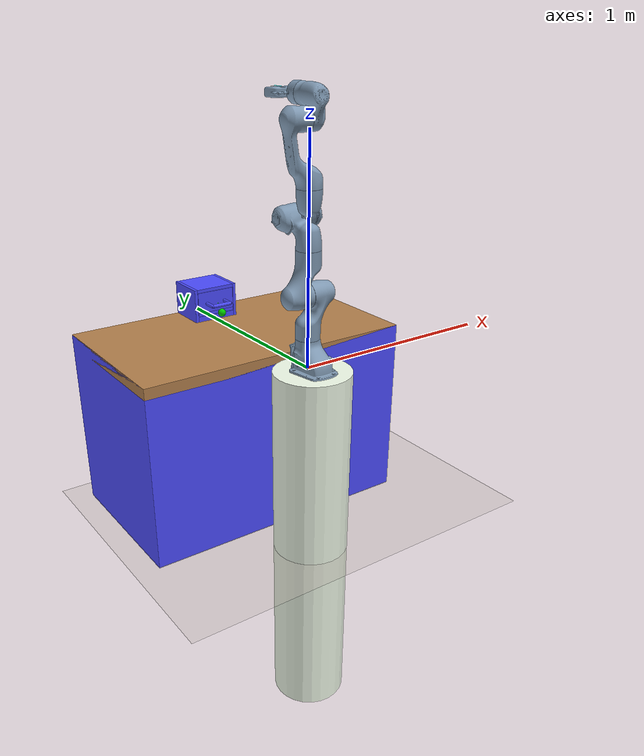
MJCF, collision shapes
<mujoco>
    <include file="../scene/basic_scene.xml"/>
    <include file="../objects/assets/drawer_dependencies.xml"/>

    <!-- franka files -->
    <include file="../franka_reach/third_party/franka/assets/assets.xml"/>
    <include file="../franka_reach/third_party/franka/assets/actuator0.xml"/>

    <compiler inertiafromgeom='auto' inertiagrouprange='3 5' angle="radian"/>

    <worldbody>
      <camera pos="0 0.5 1.5" name="topview" />
      <camera name="corner" mode="fixed" pos="-1.1 -0.4 0.6" xyaxes="1 -1 0 0.2 0.2 1"/>
      <camera name="corner2" fovy="60" mode="fixed" pos="1.3 -0.2 1.1" euler="3.9 2.3 3.74"/>
      <camera name="corner3" fovy="45" mode="fixed" pos="0.9 0 1.5" euler="3.5 2.7 4.14"/>

      <body pos='0 0 0' euler='0 0 1.57'>
          <geom type='cylinder' size='0.18 .90' pos='-.04 0 -0.90' class='panda_viz'/>
          <include file="../franka_reach/third_party/franka/assets/chain0.xml"/>
      </body>

      <body name="mocap" mocap="true" pos="0 0 1.09" euler="-1.57 0 -.785">
        <site name="mocap" pos="0 0 0" rgba="0.0 0.5 0.5 0" size="0.05" type="sphere"></site>
      </body>
    </worldbody>
    <!-- franka files -->

    <worldbody>
        <body name="drawer" pos="0. 0.9 0">
            <include file="../objects/assets/drawer.xml"/>
        </body>

        <site name="goal" pos="0. 0.74 0.05" size="0.02"
              rgba="0 0.8 0 1"/>
    </worldbody>
    <equality>
        <weld body1="mocap" body2="hand" solref="0.005 1"></weld>
    </equality>

</mujoco>

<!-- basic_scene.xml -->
<mujocoinclude>
  <option timestep='0.0025' iterations="50" tolerance="1e-10" solver="Newton" jacobian="dense" cone="elliptic"/>

  <asset>
    <!-- night sky -->
     <texture type="skybox" builtin="gradient" rgb1=".50 .495 .48" rgb2=".50 .495 .48" width="32" height="32"/>
     <texture name="T_table" type="cube" file="../textures/wood2.png"/>
     <texture name="T_floor" type="2d" file="../textures/floor2.png"/>

     <material name="basic_floor" texture="T_floor" texrepeat="12 12" shininess=".3" specular="0.5" reflectance="0.2"/>
     <material name="table_wood" texture="T_table" shininess=".3" specular="0.5"/>
      <!--material name="table_wood" shininess=".3" specular="0.5" rgba="1 1 1 1"/-->
     <material name="table_col" rgba="0.3 0.3 1.0 0.5" shininess="0" specular="0"/>

     <mesh file="../objects/meshes/table/tablebody.stl" name="tablebody" scale="1 1 1"/>
     <mesh file="../objects/meshes/table/tabletop.stl" name="tabletop" scale="1 1 1"/>
  </asset>

  <visual>
      <map fogstart="1.5" fogend="5" force="0.1" znear="0.1"/>
      <quality shadowsize ="4096" offsamples="4"/>

      <headlight ambient="0.4 0.4 0.4"/>

  </visual>

  <worldbody>
      <light castshadow="false" directional='true' diffuse='.3 .3 .3' specular='0.3 0.3 0.3' pos='-1 -1 1' dir='1 1 -1'/>
      <light directional='true' diffuse='.3 .3 .3' specular='0.3 0.3 0.3' pos='1 -1 1' dir='-1 1 -1'/>
      <light castshadow="false" directional='true' diffuse='.3 .3 .3' specular='0.3 0.3 0.3' pos='0 1 1' dir='0 -1 -1'/>
      <body name="tablelink" pos="0 .6 0">
        <geom material="table_wood" group="1" type="box" size=".7 .4 .027" pos="0 0 -.027" conaffinity="0" contype="0"/>
        <geom material="table_wood" group="1" mesh="tablebody" pos="0 0 -0.65" type="mesh" conaffinity="0" contype="0"/>
        <geom material="table_col" group="4" pos="0.0 0.0 -0.46" size="0.7 0.4 0.46" type="box" conaffinity="1" contype="0"/>
      </body>

      <geom name="floor" size="4 4 .1" pos="0 0 -.913" conaffinity="1" contype="1" type="plane" material="basic_floor" condim="3"/>

  </worldbody>

</mujocoinclude>

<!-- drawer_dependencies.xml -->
<mujocoinclude>
    <!-- dscho mod becauseof mass & inertia error-->
    <asset>

      <material name="drawer_col" rgba="0.3 0.3 1.0 0.5" shininess="0" specular="0"/>
      <material name="drawer_red" rgba="0.19 0.38 0.2 1" shininess="1" reflectance=".7" specular=".5"/>
      <material name="drawer_white" rgba=".75 .75 .75 1" shininess="1" reflectance=".7" specular=".5"/>
      <material name="drawer_beige" rgba=".4 .65 .4 1" shininess="1" reflectance="1" specular=".5"/>

    </asset>
    <default>

      <default class="drawer_base">
          <joint armature="0.001" damping="2" limited="true"/>
          <geom conaffinity="0" contype="0" group="1" type="mesh"/>
          <position ctrllimited="true" ctrlrange="0 1.57"/>
          <default class="drawer_viz">
              <geom condim="4" type="mesh"/>
          </default>
          <default class="drawer_col">
              <geom conaffinity="1" condim="3" contype="1" group="4" material="drawer_col" solimp="0.99 0.99 0.01" solref="0.01 1"/>
          </default>
      </default>
    </default>

    <asset>
        <mesh file="../objects/meshes/drawer/drawer.stl" name="drawer"/>
        <mesh file="../objects/meshes/drawer/drawercase.stl" name="drawercase"/>
        <mesh file="../objects/meshes/drawer/drawerhandle.stl" name="drawerhandle"/>
    </asset>

</mujocoinclude>

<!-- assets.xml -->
<!-- Modified from the original source code at
        1) https://github.com/vikashplus/franka
    which was originally written by Vikash Kumar and licensed under the Apache License= -->
<mujocoinclude>
    <compiler angle="radian"/>
    <option timestep="0.002"/>
    <size nuser_actuator="5"/>

    <asset>
        <mesh name="link0_col" file="../franka_reach/third_party/franka/meshes/collision/link0.stl"/>
        <mesh name="link1_col" file="../franka_reach/third_party/franka/meshes/collision/link1.stl"/>
        <mesh name="link2_col" file="../franka_reach/third_party/franka/meshes/collision/link2.stl"/>
        <mesh name="link3_col" file="../franka_reach/third_party/franka/meshes/collision/link3.stl"/>
        <mesh name="link4_col" file="../franka_reach/third_party/franka/meshes/collision/link4.stl"/>
        <mesh name="link5_col" file="../franka_reach/third_party/franka/meshes/collision/link5.stl"/>
        <mesh name="link6_col" file="../franka_reach/third_party/franka/meshes/collision/link6.stl"/>
        <mesh name="link7_col" file="../franka_reach/third_party/franka/meshes/collision/link7.stl"/>
        <mesh name="hand_col" file="../franka_reach/third_party/franka/meshes/collision/hand.stl"/>
        <mesh name="finger_col" file="../franka_reach/third_party/franka/meshes/collision/finger.stl" scale='1.75 1.0 1.75'/>
        <mesh name="link0_viz" file="../franka_reach/third_party/franka/meshes/visual/link0.stl"/>
        <mesh name="link1_viz" file="../franka_reach/third_party/franka/meshes/visual/link1.stl"/>
        <mesh name="link2_viz" file="../franka_reach/third_party/franka/meshes/visual/link2.stl"/>
        <mesh name="link3_viz" file="../franka_reach/third_party/franka/meshes/visual/link3.stl"/>
        <mesh name="link4_viz" file="../franka_reach/third_party/franka/meshes/visual/link4.stl"/>
        <mesh name="link5_viz" file="../franka_reach/third_party/franka/meshes/visual/link5.stl"/>
        <mesh name="link6_viz" file="../franka_reach/third_party/franka/meshes/visual/link6.stl"/>
        <mesh name="link7_viz" file="../franka_reach/third_party/franka/meshes/visual/link7.stl"/>
        <mesh name="hand_viz" file="../franka_reach/third_party/franka/meshes/visual/hand.stl"/>
        <mesh name="finger_viz" file="../franka_reach/third_party/franka/meshes/collision/finger.stl" scale='1.75 1.0 1.75'/>

    </asset>

    <default>
        <default class="panda">
            <joint pos="0 0 0" axis="0 0 1" limited="true"/>
            <position forcelimited="true" ctrllimited="true" user="1002 40 2001 -0.005 0.005"/>
            <default class="panda_viz">
                <geom contype="0" conaffinity="0" group="0" type="mesh" rgba=".95 .99 .92 1" mass="0"/>
            </default>

            <default class="panda_col">
                <geom contype="1" conaffinity="1" group="3" type="mesh" rgba=".5 .6 .7 1"/>
            </default>
            <default class="panda_arm">
                <joint damping="100"/>
            </default>
             <default class="panda_forearm">
                <joint damping="10"/>
            </default>
             <default class="panda_finger">
                <joint damping="100" armature='5'/>
                <geom friction="1 0.5 0.0001" solref="0.01 1" solimp="0.8 0.9 0.001" margin="0.001" user="0" rgba="0.5 0.6 0.7 .4" contype="1" conaffinity="0" condim="6" group="3" />
                <position user="1002 40 2001 -0.0001 0.0001"/>
            </default>
        </default>

        <default class="panda_overlay">
            <joint limited="false" damping="1000" armature="1" frictionloss="10"/>
            <geom contype="0" conaffinity="0" group="2" type="mesh" rgba=".42 0.42 0.42 .5"/>
        </default>
    </default>
</mujocoinclude>

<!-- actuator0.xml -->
<!-- Modified from the original source code at
        1) https://github.com/vikashplus/franka
    which was originally written by Vikash Kumar and licensed under the Apache License= -->

<mujocoinclude>
	<actuator>
        <position name="l_gripper_finger_joint" ctrllimited="true" ctrlrange="-1 1" joint="panda0_finger_joint2" kp="400" user="1"/>
        <position name="r_gripper_finger_joint" ctrllimited="true" ctrlrange="-1 1" joint="panda0_finger_joint1" kp="400" user="1"/>
    </actuator>
</mujocoinclude>

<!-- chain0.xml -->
<!-- Robot limits pulled from https://frankaemika.github.io/docs/control_parameters.html#constants -->
<!-- Modified from the original source code at
        1) https://github.com/vikashplus/franka
    which was originally written by Vikash Kumar and licensed under the Apache License= -->
<mujocoinclude>
	<body name="panda0_link0" childclass="panda" >
        <geom name="link0_viz" class="panda_viz" mesh="link0_viz"/>
        <geom name="link0_col" class="panda_col" mesh="link0_col" mass="2.91242"/>
        <body name="panda0_link1" pos="0 0 0.333">
            <joint name="panda0_joint1" range="-2.8973 2.8973" class="panda_arm"/>
            <geom class="panda_viz" mesh="link1_viz"/>
            <geom class="panda_col" mesh="link1_col" mass="2.7063"/>
            <body name="panda0_link2" pos="0 0 0" quat="0.707107 -0.707107 0 0">
                <joint name="panda0_joint2" range="-1.7628 1.7628" class="panda_arm"/>
                <geom class="panda_viz" mesh="link2_viz"/>
                <geom class="panda_col" mesh="link2_col" mass="2.73046"/>
                <body name="panda0_link3" pos="0 -0.316 0" quat="0.707107 0.707107 0 0">
                    <joint name="panda0_joint3" range="-2.8973 2.8973" class="panda_arm"/>
                    <geom class="panda_viz" mesh="link3_viz"/>
                    <geom class="panda_col" mesh="link3_col" mass="2.04104"/>
                    <body name="panda0_link4" pos="0.0825 0 0" quat="0.707107 0.707107 0 0">
                        <joint name="panda0_joint4" range="-3.0718 -0.4" class="panda_arm"/>
                        <geom class="panda_viz" mesh="link4_viz"/>
                        <geom class="panda_col" mesh="link4_col" mass="2.08129"/>
                        <body name="panda0_link5" pos="-0.0825 0.384 0" quat="0.707107 -0.707107 0 0">
                            <joint name="panda0_joint5" range="-2.8973 2.8973" class="panda_forearm"/>
                            <geom class="panda_viz" mesh="link5_viz"/>
                            <geom class="panda_col" mesh="link5_col" mass="3.00049"/>
                            <body name="panda0_link6" pos="0 0 0" euler='1.57 0 1.57'>
                                <joint name="panda0_joint6" range="-1.6573 2.1127" class="panda_forearm"/>
                                <geom class="panda_viz" mesh="link6_viz"/>
                                <geom class="panda_col" mesh="link6_col" mass="1.3235"/>
                                <body name="panda0_link7" pos="0.088 0 0" euler='1.57 0 0.7854'>
                                    <site name='weld_point' pos='0 0 0' size='0.01' euler='0 0 0'/>
                                    <joint name="panda0_joint7" range="-2.8973 2.8973" class="panda_forearm"/>
                                    <geom class="panda_viz" mesh="link7_viz"/>
                                    <geom class="panda_col" mesh="link7_col" mass="0.2"/>
                                    <geom name="hand_viz" pos="0 0 0.107" quat="0.92388 0 0 -0.382683" class="panda_viz" mesh="hand_viz"/>
                                    <geom name="hand_col" pos="0 0 0.107" quat="0.92388 0 0 -0.382683" class="panda_col" mesh="hand_col" mass="0.81909"/>
                                    <body name="hand" pos="0 0 0.2104"/>
                                    <site name='viz_weldpoint' rgba="0.8 0.8 0.8 1" pos='0 0 .2104' size='0.01' euler='0 0 -0.785398'/>
                                    <site name='endEffector' rgba="0.8 0.8 0.8 1" pos='0 0 .2549' size='0.01' euler='0 0 -0.785398'/>
                                    <body name="panda0_leftfinger" pos="0 0 0.1654" quat="0.92388 0 0 -0.382683" childclass='panda_finger'>
                                        <inertial pos="-1.57863e-05 0.0118731 0.0434103" quat="0.705868 0.0310348 -0.0314925 0.706962" mass="0.0927059" diaginertia="6.57134e-05 6.09611e-05 1.09932e-05" />
                                        <joint name="panda0_finger_joint1" pos="0 0 0" axis="0 1 0" range= "0 0.04" armature="100" damping="1000" limited="true"  type="slide"/>
                                        <body name="leftpad" pos ="0 0 0.045" >
                                            <site name='leftEndEffector' rgba="0.8 0 0 1" pos='0 0.012 0.045' size='0.01' euler='0 0 0'/>
                                            <site name="viz_leftpad" pos="0 0.009 0" size="0.01" rgba='0 1 0 1' />
                                            <geom name="leftpad_geom" group="0" euler="0 1.57 0" condim="4" margin="0.001" type="box" pos="0 0.009 0" size="0.045 0.003 0.015" rgba="0 1 1 1.0" solimp="0.95 0.99 0.01" solref="0.01 1" friction="2 0.1 0.002"  contype="1" conaffinity="1" />
                                        </body>

                                    </body>
                                    <body name="panda0_rightfinger" pos="0 0 0.1654" quat="0.92388 0 0 -0.382683"  childclass='panda_finger'>
                                        <inertial pos="1.57863e-05 -0.0118731 0.0434103" quat="0.705868 -0.0310348 0.0314925 0.706962" mass="0.0927059" diaginertia="6.57134e-05 6.09611e-05 1.09932e-05" />
                                        <joint name="panda0_finger_joint2" pos="0 0 0" axis="0 -1 0" range= "0 0.04" armature="100" damping="1000" limited="true"  type="slide"/>
                                        <body name="rightpad" pos ="0 0 0.045" >
                                            <site name='rightEndEffector' rgba="0.8 0 0 1" pos='0 -0.012 0.045' size='0.01' euler='0 0 0'/>
                                            <site name="viz_rightpad" pos="0 -0.009 0" size="0.01" rgba='0 1 0 1' />
                                            <geom name="rightpad_geom" group="0" euler="0 1.57 0" condim="4" margin="0.001" type="box" pos="0 -0.009 0" size="0.045 0.003 0.015" rgba="1 1 1 1.0" solimp="0.95 0.99 0.01" solref="0.01 1" friction="2 0.1 0.002"  contype="1" conaffinity="1" />
                                        </body>
                                    </body>
                                </body>
                            </body>
                        </body>
                    </body>
                </body>
            </body>
        </body>
    </body>
</mujocoinclude>

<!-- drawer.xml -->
<mujocoinclude>
    <body childclass="drawer_base">
        <body name="drawercase_link" pos="0 0 0.084">
            <geom material="drawer_beige" mesh="drawercase"/>
            <geom class="drawer_col" pos="-0.11 0 0" size="0.008 0.1 0.084" type="box" mass=".05"/>
            <geom class="drawer_col" pos="0.11 0 0" size="0.008 0.1 0.084" type="box" mass=".05"/>
            <geom class="drawer_col" pos="0 0.092 -0.008" size="0.102 0.008 0.076" type="box" mass=".05"/>
            <geom class="drawer_col" pos="0 -0.008 -0.07" size="0.102 0.092 0.014" type="box" mass=".05"/>
            <geom class="drawer_col" pos="0 0 0.076" size="0.102 0.1 0.008" type="box" mass=".05"/>
            <body name="drawer_link" pos="0 -0.01 0.006">
                <joint type="slide" range="-0.16 0" axis="0 1 0" name="goal_slidey" pos="0 0 0" damping="2"/>
                <geom material="drawer_beige" mesh="drawer"/>
                <geom material="drawer_white" mesh="drawerhandle" pos="0 -0.114 0" name="objGeom"/>
                <site name="drawer_wall" pos="0 -0.094 0" size="0.01" rgba=" 1 0 0 0"/> <!-- dscho add-->
                <site name="drawer_handle" pos="0 -0.114 0" size="0.002" rgba=" 0 1 0 1"/> <!-- dscho add-->
                <geom class="drawer_col" pos="0 -0.082 0.008" size="0.1 0.008 0.052" type="box" mass=".04"/>
                <geom class="drawer_col" pos="0 0.082 0.008" size="0.1 0.008 0.052" type="box" mass=".04"/>
                <geom class="drawer_col" pos="-0.092 0 0.008" size="0.008 0.074 0.052" type="box" mass=".04"/>
                <geom class="drawer_col" pos="0.092 0 0.008" size="0.008 0.074 0.052" type="box" mass=".04"/>
                <geom class="drawer_col" pos="0 0 -0.052" size="0.1 0.09 0.008" type="box" mass=".04"/>
                <geom class="drawer_col" euler="1.571 0 0" pos="-0.05 -0.12 0.0" size="0.009 0.03" type="capsule" mass=".06"/>
                <geom class="drawer_col" euler="0 1.57 0" pos="0 -0.15 0" size="0.009 0.05" type="capsule" mass=".06"/>
                <geom class="drawer_col" euler="1.57 0 0" pos="0.05 -0.12 0" size="0.009 0.03" type="capsule" mass=".06"/>
            </body>
        </body>
    </body>
</mujocoinclude>
